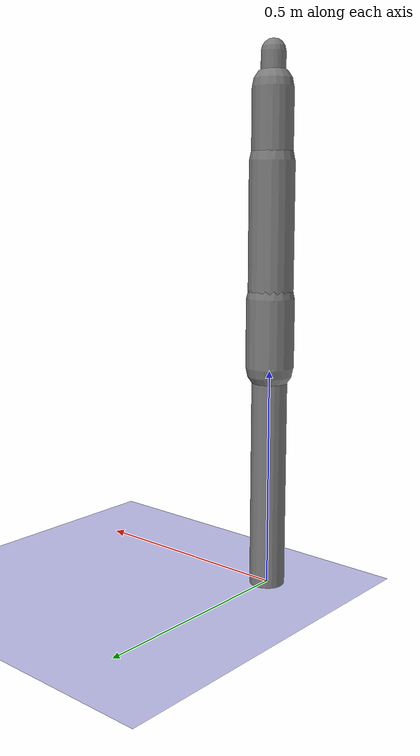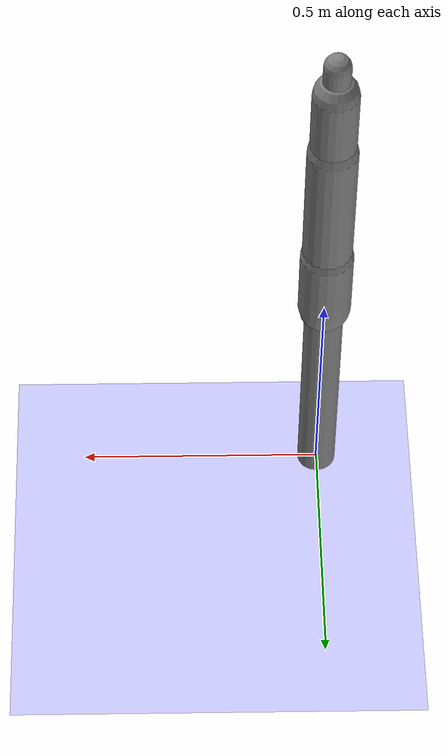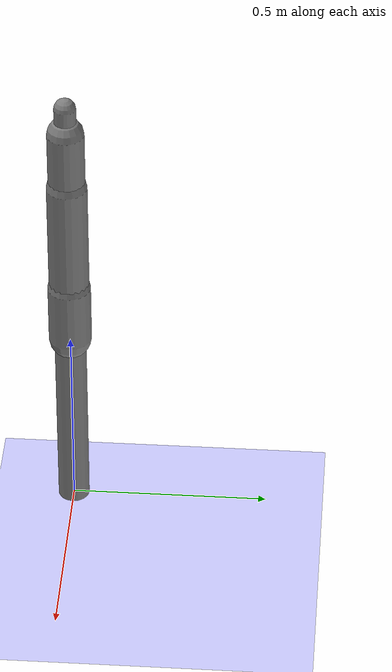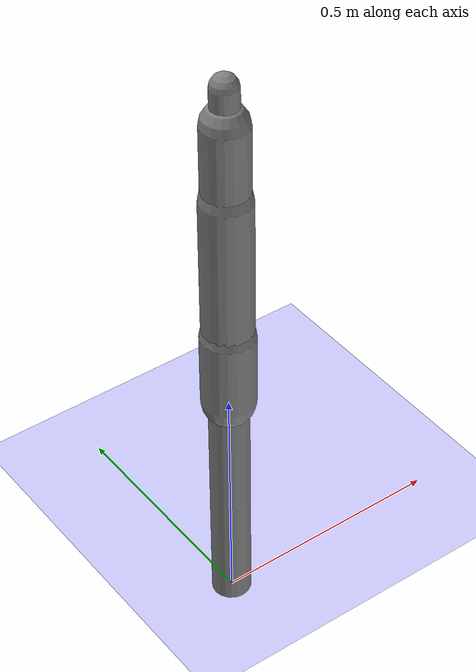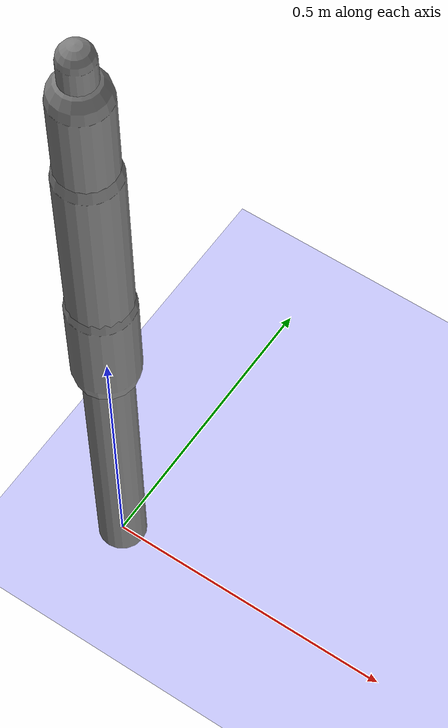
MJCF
<?xml version='1.0' encoding='UTF-8'?>
<mujoco model="robot_model">
  <worldbody>
    <light name="light" pos="0 -3 10" dir="0 0.5 -1" diffuse=".8 .8 .8" specular="0.1 0.1 0.1"/>
    <geom name="floor" type="plane" size="10.0 10.0 0.1" pos="0 0 0" rgba="0.8 0.8 1 1" contype="2" conaffinity="1"/>
    <body name="limb0" pos="0 0 0">
      <geom type="capsule" fromto="0 0 0 0 0 0.5408439110647875" size="0.04" density="1200.0" contype="1" conaffinity="2"/>
      <site type="sphere" size="0.01" name="limb0_site0" pos="0 0 0.5098300227811943"/>
      <site type="sphere" size="0.01" name="limb0_site1" pos="0 0 0.5093160402305688"/>
      <freejoint name="limb0_root"/>
      <body name="limb1" pos="0 0 0.5098300227811943">
        <geom type="capsule" fromto="0 0 0 0 0 0.2108483557747831" size="0.03176305440673138" density="688.7771406626807" contype="1" conaffinity="2"/>
        <site type="sphere" size="0.01" name="limb1_site0" pos="0 0 0.1315488757351795"/>
        <site type="sphere" size="0.01" name="limb1_site1" pos="0 0 0.20255461164896735"/>
        <body name="limb2" pos="0 0 0.1315488757351795">
          <geom type="capsule" fromto="0 0 0 0 0 0.328612757384137" size="0.05065179609246566" density="732.5468624136837" contype="1" conaffinity="2"/>
          <joint name="joint_limb1_limb2_0" type="hinge" axis="0 1 0" range="-82.20258722147578 82.20258722147578" damping="5.0"/>
        </body>
        <body name="limb3" pos="0 0 0.20255461164896735">
          <geom type="capsule" fromto="0 0 0 0 0 0.4886525017141072" size="0.02730849030649112" density="1118.1587480940386" contype="1" conaffinity="2"/>
          <site type="sphere" size="0.01" name="limb3_site0" pos="0 0 0.2148602362279738"/>
          <site type="sphere" size="0.01" name="limb3_site1" pos="0 0 0.2502629485534305"/>
          <body name="limb4" pos="0 0 0.2148602362279738">
            <geom type="capsule" fromto="0 0 0 0 0 0.19942307054689806" size="0.04609395862756084" density="1147.4288306062897" contype="1" conaffinity="2"/>
            <joint name="joint_limb3_limb4_0" type="hinge" axis="0 1 0" range="-98.89882698854483 98.89882698854483" damping="5.0"/>
          </body>
          <body name="limb5" pos="0 0 0.2502629485534305">
            <geom type="capsule" fromto="0 0 0 0 0 0.23889152307481865" size="0.024047995511431823" density="791.373883860143" contype="1" conaffinity="2"/>
            <joint name="joint_limb3_limb5_0" type="hinge" axis="1 0 0" range="-39.46093477322345 39.46093477322345" damping="5.0"/>
          </body>
          <joint name="joint_limb1_limb3_0" type="hinge" axis="0 1 0" range="-80.38696577407528 80.38696577407528" damping="5.0"/>
        </body>
        <joint name="joint_limb0_limb1_0" type="hinge" axis="0 1 0" range="-72.78200781124774 72.78200781124774" damping="5.0"/>
      </body>
      <body name="limb6" pos="0 0 0.5093160402305688">
        <geom type="capsule" fromto="0 0 0 0 0 0.15676709721045382" size="0.054112575302384974" density="1200.0" contype="1" conaffinity="2"/>
        <site type="sphere" size="0.01" name="limb6_site0" pos="0 0 0.0021536442171929686"/>
        <body name="limb7" pos="0 0 0.0021536442171929686">
          <geom type="capsule" fromto="0 0 0 0 0 0.3297643075211269" size="0.03183707388037653" density="514.4016674114245" contype="1" conaffinity="2"/>
          <joint name="joint_limb6_limb7_0" type="hinge" axis="1 0 0" range="-57.57048859145458 57.57048859145458" damping="5.0"/>
        </body>
        <joint name="joint_limb0_limb6_0" type="hinge" axis="0 1 0" range="-46.186401585393725 46.186401585393725" damping="5.0"/>
      </body>
    </body>
  </worldbody>
  <actuator>
    <position name="position_actuator_joint_limb0_limb1_0" joint="joint_limb0_limb1_0" gear="1.0330237717590445" inheritrange="1" kp="100.0"/>
    <position name="position_actuator_joint_limb1_limb2_0" joint="joint_limb1_limb2_0" gear="1.2346623760059388" inheritrange="1" kp="100.0"/>
    <position name="position_actuator_joint_limb1_limb3_0" joint="joint_limb1_limb3_0" gear="1.272740550353963" inheritrange="1" kp="100.0"/>
    <position name="position_actuator_joint_limb3_limb4_0" joint="joint_limb3_limb4_0" gear="1.1120952926298953" inheritrange="1" kp="100.0"/>
    <position name="position_actuator_joint_limb3_limb5_0" joint="joint_limb3_limb5_0" gear="1.6699171564828723" inheritrange="1" kp="100.0"/>
    <position name="position_actuator_joint_limb0_limb6_0" joint="joint_limb0_limb6_0" gear="0.5181521235082891" inheritrange="1" kp="100.0"/>
    <position name="position_actuator_joint_limb6_limb7_0" joint="joint_limb6_limb7_0" gear="1.5339068247322685" inheritrange="1" kp="100.0"/>
  </actuator>
</mujoco>
